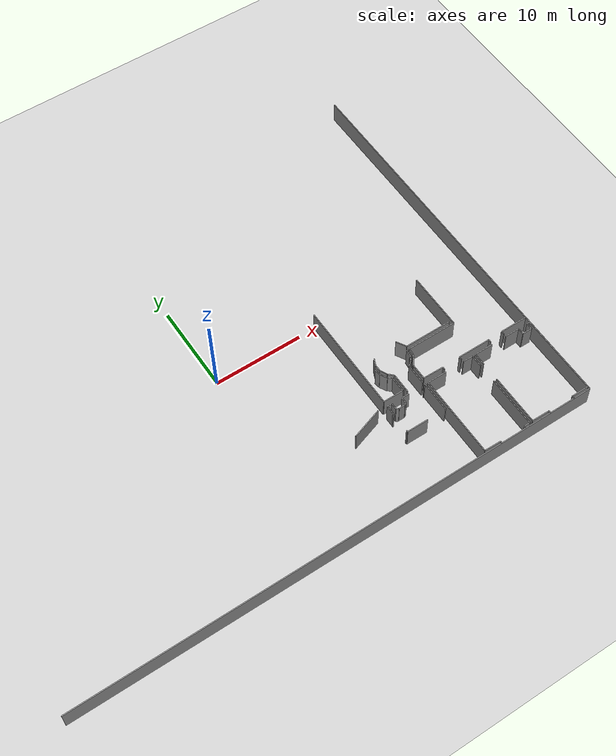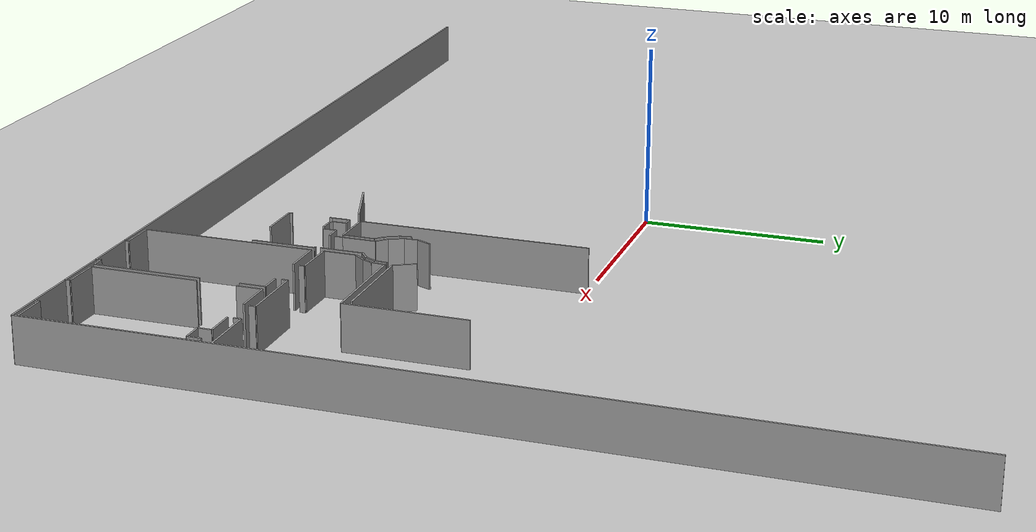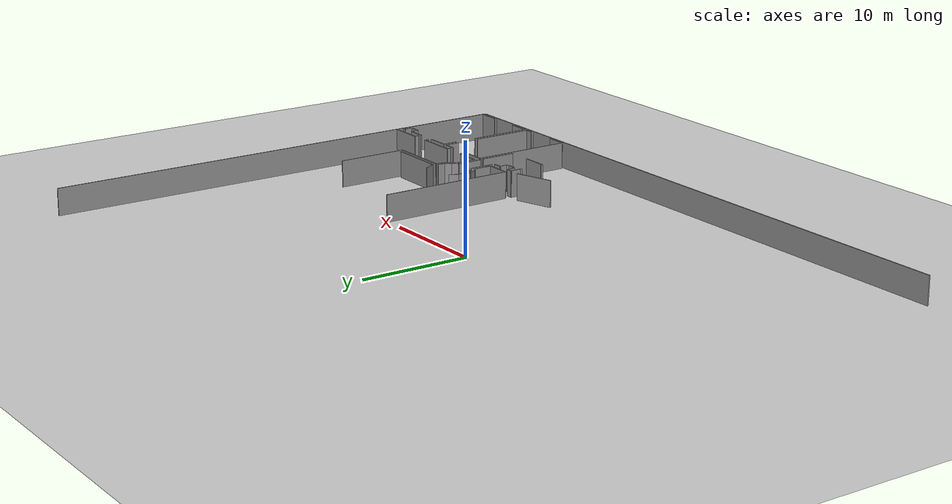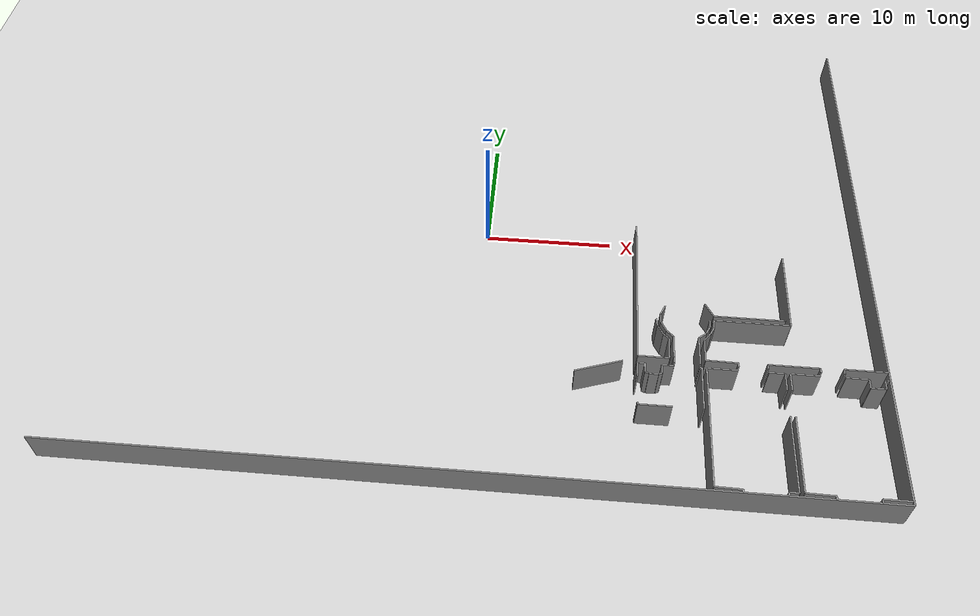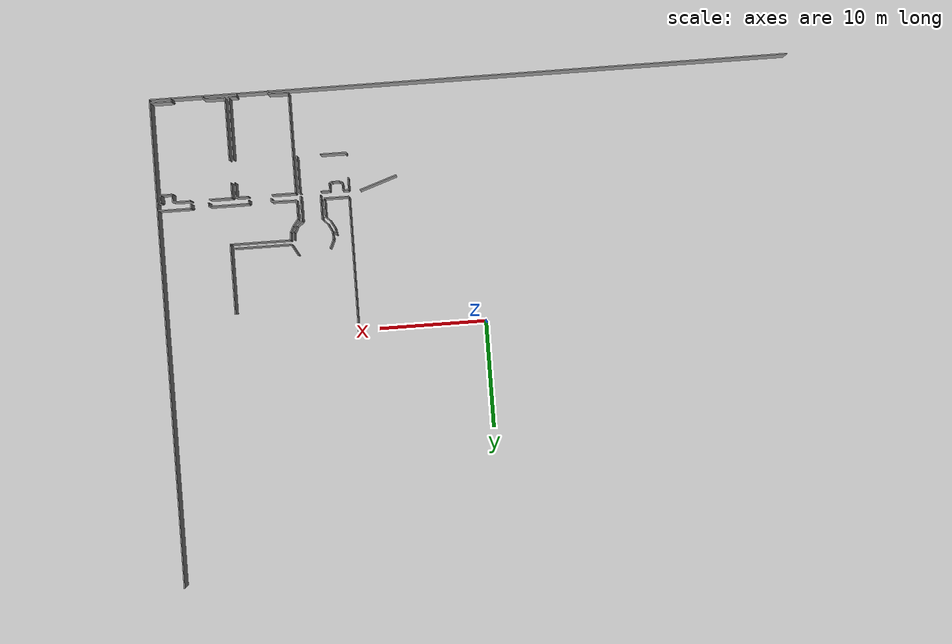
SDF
<sdf version="1.6">
 <world name="default">
  <model name="ground_plane">
   <static>1</static>
   <link name="link">
    <collision name="collision">
     <geometry><plane><normal>0 0 1</normal><size>100 100</size></plane></geometry>
     <surface><friction><ode><mu>100</mu><mu2>50</mu2></ode></friction></surface>
    </collision>
    <visual name="visual">
     <cast_shadows>0</cast_shadows>
     <geometry><plane><normal>0 0 1</normal><size>100 100</size></plane></geometry>
     <material>
      <script><uri>file://media/materials/scripts/gazebo.material</uri><name>Gazebo/Grey</name></script>
     </material>
    </visual>
   </link>
  </model>
  <model name="50032446">
   <static>1</static>
   <link name="Wall_120">
    <collision name="Wall_120_Collision">
     <geometry><box><size>3.64823232241 0.1 2.5</size></box></geometry>
     <pose>1.82411616121 0 1.25 0 0 0</pose>
    </collision>
    <visual name="Wall_120_Visual">
     <pose>1.82411616121 0 1.25 0 0 0</pose>
     <geometry><box><size>3.64823232241 0.1 2.5</size></box></geometry>
     <material>
      <script><uri>file://media/materials/scripts/gazebo.material</uri><name>Gazebo/Grey</name></script>
      <ambient>1 1 1 1</ambient>
     </material>
    </visual>
    <pose>40.6092931696 -35.8011841719 0 0 0 -2.82094366297</pose>
   </link>
   <link name="Wall_137">
    <collision name="Wall_137_Collision">
     <geometry><box><size>1.76926821023 0.1 2.5</size></box></geometry>
     <pose>0.884634105117 0 1.25 0 0 0</pose>
    </collision>
    <visual name="Wall_137_Visual">
     <pose>0.884634105117 0 1.25 0 0 0</pose>
     <geometry><box><size>1.76926821023 0.1 2.5</size></box></geometry>
     <material>
      <script><uri>file://media/materials/scripts/gazebo.material</uri><name>Gazebo/Grey</name></script>
      <ambient>1 1 1 1</ambient>
     </material>
    </visual>
    <pose>46.5738696801 -35.2704799594 0 0 0 1.57079632679</pose>
   </link>
   <link name="Wall_138">
    <collision name="Wall_138_Collision">
     <geometry><box><size>0.773496611239 0.1 2.5</size></box></geometry>
     <pose>0.386748305619 0 1.25 0 0 0</pose>
    </collision>
    <visual name="Wall_138_Visual">
     <pose>0.386748305619 0 1.25 0 0 0</pose>
     <geometry><box><size>0.773496611239 0.1 2.5</size></box></geometry>
     <material>
      <script><uri>file://media/materials/scripts/gazebo.material</uri><name>Gazebo/Grey</name></script>
      <ambient>1 1 1 1</ambient>
     </material>
    </visual>
    <pose>46.5738696801 -33.5012117492 0 0 0 0.901135911525</pose>
   </link>
   <link name="Wall_139">
    <collision name="Wall_139_Collision">
     <geometry><box><size>0.633154547784 0.1 2.5</size></box></geometry>
     <pose>0.316577273892 0 1.25 0 0 0</pose>
    </collision>
    <visual name="Wall_139_Visual">
     <pose>0.316577273892 0 1.25 0 0 0</pose>
     <geometry><box><size>0.633154547784 0.1 2.5</size></box></geometry>
     <material>
      <script><uri>file://media/materials/scripts/gazebo.material</uri><name>Gazebo/Grey</name></script>
      <ambient>1 1 1 1</ambient>
     </material>
    </visual>
    <pose>47.0539943244 -32.8947652689 0 0 0 1.11612513737</pose>
   </link>
   <link name="Wall_140">
    <collision name="Wall_140_Collision">
     <geometry><box><size>0.709411024291 0.1 2.5</size></box></geometry>
     <pose>0.354705512145 0 1.25 0 0 0</pose>
    </collision>
    <visual name="Wall_140_Visual">
     <pose>0.354705512145 0 1.25 0 0 0</pose>
     <geometry><box><size>0.709411024291 0.1 2.5</size></box></geometry>
     <material>
      <script><uri>file://media/materials/scripts/gazebo.material</uri><name>Gazebo/Grey</name></script>
      <ambient>1 1 1 1</ambient>
     </material>
    </visual>
    <pose>47.3320548649 -32.3259357538 0 0 0 1.49943780904</pose>
   </link>
   <link name="Wall_141">
    <collision name="Wall_141_Collision">
     <geometry><box><size>5.63212387165 0.1 2.5</size></box></geometry>
     <pose>2.81606193582 0 1.25 0 0 0</pose>
    </collision>
    <visual name="Wall_141_Visual">
     <pose>2.81606193582 0 1.25 0 0 0</pose>
     <geometry><box><size>5.63212387165 0.1 2.5</size></box></geometry>
     <material>
      <script><uri>file://media/materials/scripts/gazebo.material</uri><name>Gazebo/Grey</name></script>
      <ambient>1 1 1 1</ambient>
     </material>
    </visual>
    <pose>47.382634433 -31.6183301372 0 0 0 0.0</pose>
   </link>
   <link name="Wall_142">
    <collision name="Wall_142_Collision">
     <geometry><box><size>6.53366019426 0.1 2.5</size></box></geometry>
     <pose>3.26683009713 0 1.25 0 0 0</pose>
    </collision>
    <visual name="Wall_142_Visual">
     <pose>3.26683009713 0 1.25 0 0 0</pose>
     <geometry><box><size>6.53366019426 0.1 2.5</size></box></geometry>
     <material>
      <script><uri>file://media/materials/scripts/gazebo.material</uri><name>Gazebo/Grey</name></script>
      <ambient>1 1 1 1</ambient>
     </material>
    </visual>
    <pose>53.0147583046 -31.6183301372 0 0 0 1.57079632679</pose>
   </link>
   <link name="Wall_156">
    <collision name="Wall_156_Collision">
     <geometry><box><size>3.14279577927 0.1 2.5</size></box></geometry>
     <pose>1.57139788964 0 1.25 0 0 0</pose>
    </collision>
    <visual name="Wall_156_Visual">
     <pose>1.57139788964 0 1.25 0 0 0</pose>
     <geometry><box><size>3.14279577927 0.1 2.5</size></box></geometry>
     <material>
      <script><uri>file://media/materials/scripts/gazebo.material</uri><name>Gazebo/Grey</name></script>
      <ambient>1 1 1 1</ambient>
     </material>
    </visual>
    <pose>59.5631602826 -35.2199003913 0 0 0 3.14159265359</pose>
   </link>
   <link name="Wall_157">
    <collision name="Wall_157_Collision">
     <geometry><box><size>0.403365701715 0.1 2.5</size></box></geometry>
     <pose>0.201682850858 0 1.25 0 0 0</pose>
    </collision>
    <visual name="Wall_157_Visual">
     <pose>0.201682850858 0 1.25 0 0 0</pose>
     <geometry><box><size>0.403365701715 0.1 2.5</size></box></geometry>
     <material>
      <script><uri>file://media/materials/scripts/gazebo.material</uri><name>Gazebo/Grey</name></script>
      <ambient>1 1 1 1</ambient>
     </material>
    </visual>
    <pose>56.4203645033 -35.2199003913 0 0 0 -1.57079632679</pose>
   </link>
   <link name="Wall_158">
    <collision name="Wall_158_Collision">
     <geometry><box><size>0.346940253838 0.1 2.5</size></box></geometry>
     <pose>0.173470126919 0 1.25 0 0 0</pose>
    </collision>
    <visual name="Wall_158_Visual">
     <pose>0.173470126919 0 1.25 0 0 0</pose>
     <geometry><box><size>0.346940253838 0.1 2.5</size></box></geometry>
     <material>
      <script><uri>file://media/materials/scripts/gazebo.material</uri><name>Gazebo/Grey</name></script>
      <ambient>1 1 1 1</ambient>
     </material>
    </visual>
    <pose>54.7441220315 -35.623266093 0 0 0 1.57079632679</pose>
   </link>
   <link name="Wall_159">
    <collision name="Wall_159_Collision">
     <geometry><box><size>3.72916293356 0.1 2.5</size></box></geometry>
     <pose>1.86458146678 0 1.25 0 0 0</pose>
    </collision>
    <visual name="Wall_159_Visual">
     <pose>1.86458146678 0 1.25 0 0 0</pose>
     <geometry><box><size>3.72916293356 0.1 2.5</size></box></geometry>
     <material>
      <script><uri>file://media/materials/scripts/gazebo.material</uri><name>Gazebo/Grey</name></script>
      <ambient>1 1 1 1</ambient>
     </material>
    </visual>
    <pose>54.7441220315 -35.2763258392 0 0 0 3.14159265359</pose>
   </link>
   <link name="Wall_160">
    <collision name="Wall_160_Collision">
     <geometry><box><size>0.338552687262 0.1 2.5</size></box></geometry>
     <pose>0.169276343631 0 1.25 0 0 0</pose>
    </collision>
    <visual name="Wall_160_Visual">
     <pose>0.169276343631 0 1.25 0 0 0</pose>
     <geometry><box><size>0.338552687262 0.1 2.5</size></box></geometry>
     <material>
      <script><uri>file://media/materials/scripts/gazebo.material</uri><name>Gazebo/Grey</name></script>
      <ambient>1 1 1 1</ambient>
     </material>
    </visual>
    <pose>51.0149590979 -35.2763258392 0 0 0 -1.57079632679</pose>
   </link>
   <link name="Wall_161">
    <collision name="Wall_161_Collision">
     <geometry><box><size>0.305256589641 0.1 2.5</size></box></geometry>
     <pose>0.15262829482 0 1.25 0 0 0</pose>
    </collision>
    <visual name="Wall_161_Visual">
     <pose>0.15262829482 0 1.25 0 0 0</pose>
     <geometry><box><size>0.305256589641 0.1 2.5</size></box></geometry>
     <material>
      <script><uri>file://media/materials/scripts/gazebo.material</uri><name>Gazebo/Grey</name></script>
      <ambient>1 1 1 1</ambient>
     </material>
    </visual>
    <pose>48.9152715983 -35.6148785264 0 0 0 1.57079632679</pose>
   </link>
   <link name="Wall_162">
    <collision name="Wall_162_Collision">
     <geometry><box><size>2.34172906994 0.1 2.5</size></box></geometry>
     <pose>1.17086453497 0 1.25 0 0 0</pose>
    </collision>
    <visual name="Wall_162_Visual">
     <pose>1.17086453497 0 1.25 0 0 0</pose>
     <geometry><box><size>2.34172906994 0.1 2.5</size></box></geometry>
     <material>
      <script><uri>file://media/materials/scripts/gazebo.material</uri><name>Gazebo/Grey</name></script>
      <ambient>1 1 1 1</ambient>
     </material>
    </visual>
    <pose>48.9152715983 -35.3096219368 0 0 0 3.12487688543</pose>
   </link>
   <link name="Wall_163">
    <collision name="Wall_163_Collision">
     <geometry><box><size>12.589737431 0.1 2.5</size></box></geometry>
     <pose>6.29486871552 0 1.25 0 0 0</pose>
    </collision>
    <visual name="Wall_163_Visual">
     <pose>6.29486871552 0 1.25 0 0 0</pose>
     <geometry><box><size>12.589737431 0.1 2.5</size></box></geometry>
     <material>
      <script><uri>file://media/materials/scripts/gazebo.material</uri><name>Gazebo/Grey</name></script>
      <ambient>1 1 1 1</ambient>
     </material>
    </visual>
    <pose>41.68315586 -35.274038321 0 0 0 1.57079632679</pose>
   </link>
   <link name="Wall_168">
    <collision name="Wall_168_Collision">
     <geometry><box><size>5.2981462207 0.1 2.5</size></box></geometry>
     <pose>2.64907311035 0 1.25 0 0 0</pose>
    </collision>
    <visual name="Wall_168_Visual">
     <pose>2.64907311035 0 1.25 0 0 0</pose>
     <geometry><box><size>5.2981462207 0.1 2.5</size></box></geometry>
     <material>
      <script><uri>file://media/materials/scripts/gazebo.material</uri><name>Gazebo/Grey</name></script>
      <ambient>1 1 1 1</ambient>
     </material>
    </visual>
    <pose>52.6680722195 -31.2266561949 0 0 0 3.14159265359</pose>
   </link>
   <link name="Wall_169">
    <collision name="Wall_169_Collision">
     <geometry><box><size>1.24359615226 0.1 2.5</size></box></geometry>
     <pose>0.621798076132 0 1.25 0 0 0</pose>
    </collision>
    <visual name="Wall_169_Visual">
     <pose>0.621798076132 0 1.25 0 0 0</pose>
     <geometry><box><size>1.24359615226 0.1 2.5</size></box></geometry>
     <material>
      <script><uri>file://media/materials/scripts/gazebo.material</uri><name>Gazebo/Grey</name></script>
      <ambient>1 1 1 1</ambient>
     </material>
    </visual>
    <pose>47.3699259988 -31.2266561949 0 0 0 2.08958753447</pose>
   </link>
   <link name="Wall_177">
    <collision name="Wall_177_Collision">
     <geometry><box><size>0.643925614038 0.1 2.5</size></box></geometry>
     <pose>0.321962807019 0 1.25 0 0 0</pose>
    </collision>
    <visual name="Wall_177_Visual">
     <pose>0.321962807019 0 1.25 0 0 0</pose>
     <geometry><box><size>0.643925614038 0.1 2.5</size></box></geometry>
     <material>
      <script><uri>file://media/materials/scripts/gazebo.material</uri><name>Gazebo/Grey</name></script>
      <ambient>1 1 1 1</ambient>
     </material>
    </visual>
    <pose>43.0828628036 -31.815565036 0 0 0 -1.41304530807</pose>
   </link>
   <link name="Wall_178">
    <collision name="Wall_178_Collision">
     <geometry><box><size>0.850564972726 0.1 2.5</size></box></geometry>
     <pose>0.425282486363 0 1.25 0 0 0</pose>
    </collision>
    <visual name="Wall_178_Visual">
     <pose>0.425282486363 0 1.25 0 0 0</pose>
     <geometry><box><size>0.850564972726 0.1 2.5</size></box></geometry>
     <material>
      <script><uri>file://media/materials/scripts/gazebo.material</uri><name>Gazebo/Grey</name></script>
      <ambient>1 1 1 1</ambient>
     </material>
    </visual>
    <pose>43.1840219398 -32.4514950837 0 0 0 -1.07092493368</pose>
   </link>
   <link name="Wall_179">
    <collision name="Wall_179_Collision">
     <geometry><box><size>0.519378329427 0.1 2.5</size></box></geometry>
     <pose>0.259689164714 0 1.25 0 0 0</pose>
    </collision>
    <visual name="Wall_179_Visual">
     <pose>0.259689164714 0 1.25 0 0 0</pose>
     <geometry><box><size>0.519378329427 0.1 2.5</size></box></geometry>
     <material>
      <script><uri>file://media/materials/scripts/gazebo.material</uri><name>Gazebo/Grey</name></script>
      <ambient>1 1 1 1</ambient>
     </material>
    </visual>
    <pose>43.5917085092 -33.197988509 0 0 0 -0.71648215383</pose>
   </link>
   <link name="Wall_180">
    <collision name="Wall_180_Collision">
     <geometry><box><size>1.74385134182 0.1 2.5</size></box></geometry>
     <pose>0.87192567091 0 1.25 0 0 0</pose>
    </collision>
    <visual name="Wall_180_Visual">
     <pose>0.87192567091 0 1.25 0 0 0</pose>
     <geometry><box><size>1.74385134182 0.1 2.5</size></box></geometry>
     <material>
      <script><uri>file://media/materials/scripts/gazebo.material</uri><name>Gazebo/Grey</name></script>
      <ambient>1 1 1 1</ambient>
     </material>
    </visual>
    <pose>43.9833824514 -33.5390828831 0 0 0 -1.57079632679</pose>
   </link>
   <link name="Wall_181">
    <collision name="Wall_181_Collision">
     <geometry><box><size>2.30024379334 0.1 2.5</size></box></geometry>
     <pose>1.15012189667 0 1.25 0 0 0</pose>
    </collision>
    <visual name="Wall_181_Visual">
     <pose>1.15012189667 0 1.25 0 0 0</pose>
     <geometry><box><size>2.30024379334 0.1 2.5</size></box></geometry>
     <material>
      <script><uri>file://media/materials/scripts/gazebo.material</uri><name>Gazebo/Grey</name></script>
      <ambient>1 1 1 1</ambient>
     </material>
    </visual>
    <pose>43.9833824514 -35.282934225 0 0 0 3.13772526956</pose>
   </link>
   <link name="Wall_216">
    <collision name="Wall_216_Collision">
     <geometry><box><size>1.80688517548 0.1 2.5</size></box></geometry>
     <pose>0.903442587742 0 1.25 0 0 0</pose>
    </collision>
    <visual name="Wall_216_Visual">
     <pose>0.903442587742 0 1.25 0 0 0</pose>
     <geometry><box><size>1.80688517548 0.1 2.5</size></box></geometry>
     <material>
      <script><uri>file://media/materials/scripts/gazebo.material</uri><name>Gazebo/Grey</name></script>
      <ambient>1 1 1 1</ambient>
     </material>
    </visual>
    <pose>44.3244768255 -35.1566123889 0 0 0 1.57079632679</pose>
   </link>
   <link name="Wall_217">
    <collision name="Wall_217_Collision">
     <geometry><box><size>0.705832659595 0.1 2.5</size></box></geometry>
     <pose>0.352916329798 0 1.25 0 0 0</pose>
    </collision>
    <visual name="Wall_217_Visual">
     <pose>0.352916329798 0 1.25 0 0 0</pose>
     <geometry><box><size>0.705832659595 0.1 2.5</size></box></geometry>
     <material>
      <script><uri>file://media/materials/scripts/gazebo.material</uri><name>Gazebo/Grey</name></script>
      <ambient>1 1 1 1</ambient>
     </material>
    </visual>
    <pose>44.3244768255 -33.3497272135 0 0 0 2.36867156105</pose>
   </link>
   <link name="Wall_218">
    <collision name="Wall_218_Collision">
     <geometry><box><size>0.847733647796 0.1 2.5</size></box></geometry>
     <pose>0.423866823898 0 1.25 0 0 0</pose>
    </collision>
    <visual name="Wall_218_Visual">
     <pose>0.423866823898 0 1.25 0 0 0</pose>
     <geometry><box><size>0.847733647796 0.1 2.5</size></box></geometry>
     <material>
      <script><uri>file://media/materials/scripts/gazebo.material</uri><name>Gazebo/Grey</name></script>
      <ambient>1 1 1 1</ambient>
     </material>
    </visual>
    <pose>43.8191894815 -32.8568941349 0 0 0 2.03457802</pose>
   </link>
   <link name="Wall_219">
    <collision name="Wall_219_Collision">
     <geometry><box><size>0.746155322548 0.1 2.5</size></box></geometry>
     <pose>0.373077661274 0 1.25 0 0 0</pose>
    </collision>
    <visual name="Wall_219_Visual">
     <pose>0.373077661274 0 1.25 0 0 0</pose>
     <geometry><box><size>0.746155322548 0.1 2.5</size></box></geometry>
     <material>
      <script><uri>file://media/materials/scripts/gazebo.material</uri><name>Gazebo/Grey</name></script>
      <ambient>1 1 1 1</ambient>
     </material>
    </visual>
    <pose>43.4399698048 -32.0987089502 0 0 0 1.6045258611</pose>
   </link>
   <link name="Wall_220">
    <collision name="Wall_220_Collision">
     <geometry><box><size>0.864849350481 0.1 2.5</size></box></geometry>
     <pose>0.43242467524 0 1.25 0 0 0</pose>
    </collision>
    <visual name="Wall_220_Visual">
     <pose>0.43242467524 0 1.25 0 0 0</pose>
     <geometry><box><size>0.864849350481 0.1 2.5</size></box></geometry>
     <material>
      <script><uri>file://media/materials/scripts/gazebo.material</uri><name>Gazebo/Grey</name></script>
      <ambient>1 1 1 1</ambient>
     </material>
    </visual>
    <pose>43.414807105 -31.3529780309 0 0 0 1.13317491974</pose>
   </link>
   <link name="Wall_227">
    <collision name="Wall_227_Collision">
     <geometry><box><size>0.671641697641 0.1 2.5</size></box></geometry>
     <pose>0.33582084882 0 1.25 0 0 0</pose>
    </collision>
    <visual name="Wall_227_Visual">
     <pose>0.33582084882 0 1.25 0 0 0</pose>
     <geometry><box><size>0.671641697641 0.1 2.5</size></box></geometry>
     <material>
      <script><uri>file://media/materials/scripts/gazebo.material</uri><name>Gazebo/Grey</name></script>
      <ambient>1 1 1 1</ambient>
     </material>
    </visual>
    <pose>47.0794111928 -31.6183301372 0 0 0 -1.64617505707</pose>
   </link>
   <link name="Wall_228">
    <collision name="Wall_228_Collision">
     <geometry><box><size>0.666911601816 0.1 2.5</size></box></geometry>
     <pose>0.333455800908 0 1.25 0 0 0</pose>
    </collision>
    <visual name="Wall_228_Visual">
     <pose>0.333455800908 0 1.25 0 0 0</pose>
     <geometry><box><size>0.666911601816 0.1 2.5</size></box></geometry>
     <material>
      <script><uri>file://media/materials/scripts/gazebo.material</uri><name>Gazebo/Grey</name></script>
      <ambient>1 1 1 1</ambient>
     </material>
    </visual>
    <pose>47.0288316247 -32.2880646198 0 0 0 -2.04279553981</pose>
   </link>
   <link name="Wall_229">
    <collision name="Wall_229_Collision">
     <geometry><box><size>0.685027042457 0.1 2.5</size></box></geometry>
     <pose>0.342513521229 0 1.25 0 0 0</pose>
    </collision>
    <visual name="Wall_229_Visual">
     <pose>0.342513521229 0 1.25 0 0 0</pose>
     <geometry><box><size>0.685027042457 0.1 2.5</size></box></geometry>
     <material>
      <script><uri>file://media/materials/scripts/gazebo.material</uri><name>Gazebo/Grey</name></script>
      <ambient>1 1 1 1</ambient>
     </material>
    </visual>
    <pose>46.7256083845 -32.8820568347 0 0 0 -2.48696027914</pose>
   </link>
   <link name="Wall_230">
    <collision name="Wall_230_Collision">
     <geometry><box><size>2.32513512243 0.1 2.5</size></box></geometry>
     <pose>1.16256756121 0 1.25 0 0 0</pose>
    </collision>
    <visual name="Wall_230_Visual">
     <pose>1.16256756121 0 1.25 0 0 0</pose>
     <geometry><box><size>2.32513512243 0.1 2.5</size></box></geometry>
     <material>
      <script><uri>file://media/materials/scripts/gazebo.material</uri><name>Gazebo/Grey</name></script>
      <ambient>1 1 1 1</ambient>
     </material>
    </visual>
    <pose>46.1821957378 -33.2991476453 0 0 0 -1.57079632679</pose>
   </link>
   <link name="Wall_231">
    <collision name="Wall_231_Collision">
     <geometry><box><size>0.467673763099 0.1 2.5</size></box></geometry>
     <pose>0.23383688155 0 1.25 0 0 0</pose>
    </collision>
    <visual name="Wall_231_Visual">
     <pose>0.23383688155 0 1.25 0 0 0</pose>
     <geometry><box><size>0.467673763099 0.1 2.5</size></box></geometry>
     <material>
      <script><uri>file://media/materials/scripts/gazebo.material</uri><name>Gazebo/Grey</name></script>
      <ambient>1 1 1 1</ambient>
     </material>
    </visual>
    <pose>44.3262560063 -35.6242827677 0 0 0 1.57460065627</pose>
   </link>
   <link name="Wall_232">
    <collision name="Wall_232_Collision">
     <geometry><box><size>0.965078493644 0.1 2.5</size></box></geometry>
     <pose>0.482539246822 0 1.25 0 0 0</pose>
    </collision>
    <visual name="Wall_232_Visual">
     <pose>0.482539246822 0 1.25 0 0 0</pose>
     <geometry><box><size>0.965078493644 0.1 2.5</size></box></geometry>
     <material>
      <script><uri>file://media/materials/scripts/gazebo.material</uri><name>Gazebo/Grey</name></script>
      <ambient>1 1 1 1</ambient>
     </material>
    </visual>
    <pose>41.6605348472 -36.8572550545 0 0 0 1.57079632679</pose>
   </link>
   <link name="Wall_233">
    <collision name="Wall_233_Collision">
     <geometry><box><size>0.544683490092 0.1 2.5</size></box></geometry>
     <pose>0.272341745046 0 1.25 0 0 0</pose>
    </collision>
    <visual name="Wall_233_Visual">
     <pose>0.272341745046 0 1.25 0 0 0</pose>
     <geometry><box><size>0.544683490092 0.1 2.5</size></box></geometry>
     <material>
      <script><uri>file://media/materials/scripts/gazebo.material</uri><name>Gazebo/Grey</name></script>
      <ambient>1 1 1 1</ambient>
     </material>
    </visual>
    <pose>41.6605348472 -35.8921765608 0 0 0 0.0</pose>
   </link>
   <link name="Wall_234">
    <collision name="Wall_234_Collision">
     <geometry><box><size>0.726159930561 0.1 2.5</size></box></geometry>
     <pose>0.363079965281 0 1.25 0 0 0</pose>
    </collision>
    <visual name="Wall_234_Visual">
     <pose>0.363079965281 0 1.25 0 0 0</pose>
     <geometry><box><size>0.726159930561 0.1 2.5</size></box></geometry>
     <material>
      <script><uri>file://media/materials/scripts/gazebo.material</uri><name>Gazebo/Grey</name></script>
      <ambient>1 1 1 1</ambient>
     </material>
    </visual>
    <pose>42.2052183373 -35.8921765608 0 0 0 -1.57079632679</pose>
   </link>
   <link name="Wall_235">
    <collision name="Wall_235_Collision">
     <geometry><box><size>0.307615098791 0.1 2.5</size></box></geometry>
     <pose>0.153807549395 0 1.25 0 0 0</pose>
    </collision>
    <visual name="Wall_235_Visual">
     <pose>0.153807549395 0 1.25 0 0 0</pose>
     <geometry><box><size>0.307615098791 0.1 2.5</size></box></geometry>
     <material>
      <script><uri>file://media/materials/scripts/gazebo.material</uri><name>Gazebo/Grey</name></script>
      <ambient>1 1 1 1</ambient>
     </material>
    </visual>
    <pose>42.2052183373 -36.6183364914 0 0 0 -0.449605664285</pose>
   </link>
   <link name="Wall_236">
    <collision name="Wall_236_Collision">
     <geometry><box><size>0.678376217945 0.1 2.5</size></box></geometry>
     <pose>0.339188108972 0 1.25 0 0 0</pose>
    </collision>
    <visual name="Wall_236_Visual">
     <pose>0.339188108972 0 1.25 0 0 0</pose>
     <geometry><box><size>0.678376217945 0.1 2.5</size></box></geometry>
     <material>
      <script><uri>file://media/materials/scripts/gazebo.material</uri><name>Gazebo/Grey</name></script>
      <ambient>1 1 1 1</ambient>
     </material>
    </visual>
    <pose>42.482262203 -36.7520292192 0 0 0 0.0</pose>
   </link>
   <link name="Wall_237">
    <collision name="Wall_237_Collision">
     <geometry><box><size>0.282301897669 0.1 2.5</size></box></geometry>
     <pose>0.141150948835 0 1.25 0 0 0</pose>
    </collision>
    <visual name="Wall_237_Visual">
     <pose>0.141150948835 0 1.25 0 0 0</pose>
     <geometry><box><size>0.282301897669 0.1 2.5</size></box></geometry>
     <material>
      <script><uri>file://media/materials/scripts/gazebo.material</uri><name>Gazebo/Grey</name></script>
      <ambient>1 1 1 1</ambient>
     </material>
    </visual>
    <pose>43.1606384209 -36.7520292192 0 0 0 0.418132913545</pose>
   </link>
   <link name="Wall_238">
    <collision name="Wall_238_Collision">
     <geometry><box><size>0.707097279251 0.1 2.5</size></box></geometry>
     <pose>0.353548639626 0 1.25 0 0 0</pose>
    </collision>
    <visual name="Wall_238_Visual">
     <pose>0.353548639626 0 1.25 0 0 0</pose>
     <geometry><box><size>0.707097279251 0.1 2.5</size></box></geometry>
     <material>
      <script><uri>file://media/materials/scripts/gazebo.material</uri><name>Gazebo/Grey</name></script>
      <ambient>1 1 1 1</ambient>
     </material>
    </visual>
    <pose>43.4186196353 -36.6373991427 0 0 0 1.57079632679</pose>
   </link>
   <link name="Wall_239">
    <collision name="Wall_239_Collision">
     <geometry><box><size>0.859852658414 0.1 2.5</size></box></geometry>
     <pose>0.429926329207 0 1.25 0 0 0</pose>
    </collision>
    <visual name="Wall_239_Visual">
     <pose>0.429926329207 0 1.25 0 0 0</pose>
     <geometry><box><size>0.859852658414 0.1 2.5</size></box></geometry>
     <material>
      <script><uri>file://media/materials/scripts/gazebo.material</uri><name>Gazebo/Grey</name></script>
      <ambient>1 1 1 1</ambient>
     </material>
    </visual>
    <pose>43.4186196353 -35.9303018634 0 0 0 0.0</pose>
   </link>
   <link name="Wall_240">
    <collision name="Wall_240_Collision">
     <geometry><box><size>0.142842800481 0.1 2.5</size></box></geometry>
     <pose>0.0714214002407 0 1.25 0 0 0</pose>
    </collision>
    <visual name="Wall_240_Visual">
     <pose>0.0714214002407 0 1.25 0 0 0</pose>
     <geometry><box><size>0.142842800481 0.1 2.5</size></box></geometry>
     <material>
      <script><uri>file://media/materials/scripts/gazebo.material</uri><name>Gazebo/Grey</name></script>
      <ambient>1 1 1 1</ambient>
     </material>
    </visual>
    <pose>46.1255161213 -35.9303018634 0 0 0 0.0</pose>
   </link>
   <link name="Wall_241">
    <collision name="Wall_241_Collision">
     <geometry><box><size>3.45059405576 0.1 2.5</size></box></geometry>
     <pose>1.72529702788 0 1.25 0 0 0</pose>
    </collision>
    <visual name="Wall_241_Visual">
     <pose>1.72529702788 0 1.25 0 0 0</pose>
     <geometry><box><size>3.45059405576 0.1 2.5</size></box></geometry>
     <material>
      <script><uri>file://media/materials/scripts/gazebo.material</uri><name>Gazebo/Grey</name></script>
      <ambient>1 1 1 1</ambient>
     </material>
    </visual>
    <pose>46.2683589218 -35.9303018634 0 0 0 -1.57079632679</pose>
   </link>
   <link name="Wall_242">
    <collision name="Wall_242_Collision">
     <geometry><box><size>2.42527758397 0.1 2.5</size></box></geometry>
     <pose>1.21263879199 0 1.25 0 0 0</pose>
    </collision>
    <visual name="Wall_242_Visual">
     <pose>1.21263879199 0 1.25 0 0 0</pose>
     <geometry><box><size>2.42527758397 0.1 2.5</size></box></geometry>
     <material>
      <script><uri>file://media/materials/scripts/gazebo.material</uri><name>Gazebo/Grey</name></script>
      <ambient>1 1 1 1</ambient>
     </material>
    </visual>
    <pose>44.0708164788 -39.3808959192 0 0 0 3.14159265359</pose>
   </link>
   <link name="Wall_243">
    <collision name="Wall_243_Collision">
     <geometry><box><size>0.180459765733 0.1 2.5</size></box></geometry>
     <pose>0.0902298828664 0 1.25 0 0 0</pose>
    </collision>
    <visual name="Wall_243_Visual">
     <pose>0.0902298828664 0 1.25 0 0 0</pose>
     <geometry><box><size>0.180459765733 0.1 2.5</size></box></geometry>
     <material>
      <script><uri>file://media/materials/scripts/gazebo.material</uri><name>Gazebo/Grey</name></script>
      <ambient>1 1 1 1</ambient>
     </material>
    </visual>
    <pose>41.6455388948 -39.3808959192 0 0 0 1.57079632679</pose>
   </link>
   <link name="Wall_244">
    <collision name="Wall_244_Collision">
     <geometry><box><size>0.182094967071 0.1 2.5</size></box></geometry>
     <pose>0.0910474835356 0 1.25 0 0 0</pose>
    </collision>
    <visual name="Wall_244_Visual">
     <pose>0.0910474835356 0 1.25 0 0 0</pose>
     <geometry><box><size>0.182094967071 0.1 2.5</size></box></geometry>
     <material>
      <script><uri>file://media/materials/scripts/gazebo.material</uri><name>Gazebo/Grey</name></script>
      <ambient>1 1 1 1</ambient>
     </material>
    </visual>
    <pose>41.6455388948 -37.0387314949 0 0 0 1.48835058569</pose>
   </link>
   <link name="Wall_245">
    <collision name="Wall_245_Collision">
     <geometry><box><size>9.37729943231 0.1 2.5</size></box></geometry>
     <pose>4.68864971616 0 1.25 0 0 0</pose>
    </collision>
    <visual name="Wall_245_Visual">
     <pose>4.68864971616 0 1.25 0 0 0</pose>
     <geometry><box><size>9.37729943231 0.1 2.5</size></box></geometry>
     <material>
      <script><uri>file://media/materials/scripts/gazebo.material</uri><name>Gazebo/Grey</name></script>
      <ambient>1 1 1 1</ambient>
     </material>
    </visual>
    <pose>46.620636718 -45.3172597057 0 0 0 1.57079632679</pose>
   </link>
   <link name="Wall_246">
    <collision name="Wall_246_Collision">
     <geometry><box><size>2.23490523956 0.1 2.5</size></box></geometry>
     <pose>1.11745261978 0 1.25 0 0 0</pose>
    </collision>
    <visual name="Wall_246_Visual">
     <pose>1.11745261978 0 1.25 0 0 0</pose>
     <geometry><box><size>2.23490523956 0.1 2.5</size></box></geometry>
     <material>
      <script><uri>file://media/materials/scripts/gazebo.material</uri><name>Gazebo/Grey</name></script>
      <ambient>1 1 1 1</ambient>
     </material>
    </visual>
    <pose>46.620636718 -35.9399602734 0 0 0 0.0</pose>
   </link>
   <link name="Wall_247">
    <collision name="Wall_247_Collision">
     <geometry><box><size>1.14985912701 0.1 2.5</size></box></geometry>
     <pose>0.574929563503 0 1.25 0 0 0</pose>
    </collision>
    <visual name="Wall_247_Visual">
     <pose>0.574929563503 0 1.25 0 0 0</pose>
     <geometry><box><size>1.14985912701 0.1 2.5</size></box></geometry>
     <material>
      <script><uri>file://media/materials/scripts/gazebo.material</uri><name>Gazebo/Grey</name></script>
      <ambient>1 1 1 1</ambient>
     </material>
    </visual>
    <pose>51.0347842553 -35.9399602734 0 0 0 0.0</pose>
   </link>
   <link name="Wall_248">
    <collision name="Wall_248_Collision">
     <geometry><box><size>1.37759426799 0.1 2.5</size></box></geometry>
     <pose>0.688797133994 0 1.25 0 0 0</pose>
    </collision>
    <visual name="Wall_248_Visual">
     <pose>0.688797133994 0 1.25 0 0 0</pose>
     <geometry><box><size>1.37759426799 0.1 2.5</size></box></geometry>
     <material>
      <script><uri>file://media/materials/scripts/gazebo.material</uri><name>Gazebo/Grey</name></script>
      <ambient>1 1 1 1</ambient>
     </material>
    </visual>
    <pose>52.1846433823 -35.9399602734 0 0 0 -1.57079632679</pose>
   </link>
   <link name="Wall_249">
    <collision name="Wall_249_Collision">
     <geometry><box><size>5.83723799974 0.1 2.5</size></box></geometry>
     <pose>2.91861899987 0 1.25 0 0 0</pose>
    </collision>
    <visual name="Wall_249_Visual">
     <pose>2.91861899987 0 1.25 0 0 0</pose>
     <geometry><box><size>5.83723799974 0.1 2.5</size></box></geometry>
     <material>
      <script><uri>file://media/materials/scripts/gazebo.material</uri><name>Gazebo/Grey</name></script>
      <ambient>1 1 1 1</ambient>
     </material>
    </visual>
    <pose>52.1846433823 -39.4739216576 0 0 0 -1.57079632679</pose>
   </link>
   <link name="Wall_250">
    <collision name="Wall_250_Collision">
     <geometry><box><size>0.685747109784 0.1 2.5</size></box></geometry>
     <pose>0.342873554892 0 1.25 0 0 0</pose>
    </collision>
    <visual name="Wall_250_Visual">
     <pose>0.342873554892 0 1.25 0 0 0</pose>
     <geometry><box><size>0.685747109784 0.1 2.5</size></box></geometry>
     <material>
      <script><uri>file://media/materials/scripts/gazebo.material</uri><name>Gazebo/Grey</name></script>
      <ambient>1 1 1 1</ambient>
     </material>
    </visual>
    <pose>52.1846433823 -45.3111596573 0 0 0 3.14159265359</pose>
   </link>
   <link name="Wall_251">
    <collision name="Wall_251_Collision">
     <geometry><box><size>0.263572925443 0.1 2.5</size></box></geometry>
     <pose>0.131786462722 0 1.25 0 0 0</pose>
    </collision>
    <visual name="Wall_251_Visual">
     <pose>0.131786462722 0 1.25 0 0 0</pose>
     <geometry><box><size>0.263572925443 0.1 2.5</size></box></geometry>
     <material>
      <script><uri>file://media/materials/scripts/gazebo.material</uri><name>Gazebo/Grey</name></script>
      <ambient>1 1 1 1</ambient>
     </material>
    </visual>
    <pose>51.4988962725 -45.3111596573 0 0 0 -1.57079632679</pose>
   </link>
   <link name="Wall_252">
    <collision name="Wall_252_Collision">
     <geometry><box><size>0.219601743089 0.1 2.5</size></box></geometry>
     <pose>0.109800871544 0 1.25 0 0 0</pose>
    </collision>
    <visual name="Wall_252_Visual">
     <pose>0.109800871544 0 1.25 0 0 0</pose>
     <geometry><box><size>0.219601743089 0.1 2.5</size></box></geometry>
     <material>
      <script><uri>file://media/materials/scripts/gazebo.material</uri><name>Gazebo/Grey</name></script>
      <ambient>1 1 1 1</ambient>
     </material>
    </visual>
    <pose>48.5210559692 -45.5747325828 0 0 0 1.57079632679</pose>
   </link>
   <link name="Wall_253">
    <collision name="Wall_253_Collision">
     <geometry><box><size>1.90079655757 0.1 2.5</size></box></geometry>
     <pose>0.950398278787 0 1.25 0 0 0</pose>
    </collision>
    <visual name="Wall_253_Visual">
     <pose>0.950398278787 0 1.25 0 0 0</pose>
     <geometry><box><size>1.90079655757 0.1 2.5</size></box></geometry>
     <material>
      <script><uri>file://media/materials/scripts/gazebo.material</uri><name>Gazebo/Grey</name></script>
      <ambient>1 1 1 1</ambient>
     </material>
    </visual>
    <pose>48.5210559692 -45.3551308397 0 0 0 3.12166751232</pose>
   </link>
   <link name="Wall_254">
    <collision name="Wall_254_Collision">
     <geometry><box><size>5.82376705948 0.1 2.5</size></box></geometry>
     <pose>2.91188352974 0 1.25 0 0 0</pose>
    </collision>
    <visual name="Wall_254_Visual">
     <pose>2.91188352974 0 1.25 0 0 0</pose>
     <geometry><box><size>5.82376705948 0.1 2.5</size></box></geometry>
     <material>
      <script><uri>file://media/materials/scripts/gazebo.material</uri><name>Gazebo/Grey</name></script>
      <ambient>1 1 1 1</ambient>
     </material>
    </visual>
    <pose>52.5427670582 -45.2781177284 0 0 0 1.57079632679</pose>
   </link>
   <link name="Wall_255">
    <collision name="Wall_255_Collision">
     <geometry><box><size>1.40275696772 0.1 2.5</size></box></geometry>
     <pose>0.701378483858 0 1.25 0 0 0</pose>
    </collision>
    <visual name="Wall_255_Visual">
     <pose>0.701378483858 0 1.25 0 0 0</pose>
     <geometry><box><size>1.40275696772 0.1 2.5</size></box></geometry>
     <material>
      <script><uri>file://media/materials/scripts/gazebo.material</uri><name>Gazebo/Grey</name></script>
      <ambient>1 1 1 1</ambient>
     </material>
    </visual>
    <pose>52.5427670582 -37.3302629756 0 0 0 1.57079632679</pose>
   </link>
   <link name="Wall_256">
    <collision name="Wall_256_Collision">
     <geometry><box><size>2.11875015091 0.1 2.5</size></box></geometry>
     <pose>1.05937507546 0 1.25 0 0 0</pose>
    </collision>
    <visual name="Wall_256_Visual">
     <pose>1.05937507546 0 1.25 0 0 0</pose>
     <geometry><box><size>2.11875015091 0.1 2.5</size></box></geometry>
     <material>
      <script><uri>file://media/materials/scripts/gazebo.material</uri><name>Gazebo/Grey</name></script>
      <ambient>1 1 1 1</ambient>
     </material>
    </visual>
    <pose>52.5427670582 -35.9275060079 0 0 0 0.0</pose>
   </link>
   <link name="Wall_257">
    <collision name="Wall_257_Collision">
     <geometry><box><size>1.65667148316 0.1 2.5</size></box></geometry>
     <pose>0.828335741582 0 1.25 0 0 0</pose>
    </collision>
    <visual name="Wall_257_Visual">
     <pose>0.828335741582 0 1.25 0 0 0</pose>
     <geometry><box><size>1.65667148316 0.1 2.5</size></box></geometry>
     <material>
      <script><uri>file://media/materials/scripts/gazebo.material</uri><name>Gazebo/Grey</name></script>
      <ambient>1 1 1 1</ambient>
     </material>
    </visual>
    <pose>56.4297687446 -35.9275060079 0 0 0 0.0</pose>
   </link>
   <link name="Wall_258">
    <collision name="Wall_258_Collision">
     <geometry><box><size>0.728447448718 0.1 2.5</size></box></geometry>
     <pose>0.364223724359 0 1.25 0 0 0</pose>
    </collision>
    <visual name="Wall_258_Visual">
     <pose>0.364223724359 0 1.25 0 0 0</pose>
     <geometry><box><size>0.728447448718 0.1 2.5</size></box></geometry>
     <material>
      <script><uri>file://media/materials/scripts/gazebo.material</uri><name>Gazebo/Grey</name></script>
      <ambient>1 1 1 1</ambient>
     </material>
    </visual>
    <pose>58.0864402278 -35.9275060079 0 0 0 -1.57079632679</pose>
   </link>
   <link name="Wall_259">
    <collision name="Wall_259_Collision">
     <geometry><box><size>1.10461710123 0.1 2.5</size></box></geometry>
     <pose>0.552308550616 0 1.25 0 0 0</pose>
    </collision>
    <visual name="Wall_259_Visual">
     <pose>0.552308550616 0 1.25 0 0 0</pose>
     <geometry><box><size>1.10461710123 0.1 2.5</size></box></geometry>
     <material>
      <script><uri>file://media/materials/scripts/gazebo.material</uri><name>Gazebo/Grey</name></script>
      <ambient>1 1 1 1</ambient>
     </material>
    </visual>
    <pose>58.0864402278 -36.6559534566 0 0 0 0.0</pose>
   </link>
   <link name="Wall_260">
    <collision name="Wall_260_Collision">
     <geometry><box><size>0.726668267929 0.1 2.5</size></box></geometry>
     <pose>0.363334133965 0 1.25 0 0 0</pose>
    </collision>
    <visual name="Wall_260_Visual">
     <pose>0.363334133965 0 1.25 0 0 0</pose>
     <geometry><box><size>0.726668267929 0.1 2.5</size></box></geometry>
     <material>
      <script><uri>file://media/materials/scripts/gazebo.material</uri><name>Gazebo/Grey</name></script>
      <ambient>1 1 1 1</ambient>
     </material>
    </visual>
    <pose>59.191057329 -36.6559534566 0 0 0 1.57079632679</pose>
   </link>
   <link name="Wall_261">
    <collision name="Wall_261_Collision">
     <geometry><box><size>0.348719434627 0.1 2.5</size></box></geometry>
     <pose>0.174359717314 0 1.25 0 0 0</pose>
    </collision>
    <visual name="Wall_261_Visual">
     <pose>0.174359717314 0 1.25 0 0 0</pose>
     <geometry><box><size>0.348719434627 0.1 2.5</size></box></geometry>
     <material>
      <script><uri>file://media/materials/scripts/gazebo.material</uri><name>Gazebo/Grey</name></script>
      <ambient>1 1 1 1</ambient>
     </material>
    </visual>
    <pose>59.191057329 -35.9292851887 0 0 0 0.0</pose>
   </link>
   <link name="Wall_262">
    <collision name="Wall_262_Collision">
     <geometry><box><size>9.35874511837 0.1 2.5</size></box></geometry>
     <pose>4.67937255919 0 1.25 0 0 0</pose>
    </collision>
    <visual name="Wall_262_Visual">
     <pose>4.67937255919 0 1.25 0 0 0</pose>
     <geometry><box><size>9.35874511837 0.1 2.5</size></box></geometry>
     <material>
      <script><uri>file://media/materials/scripts/gazebo.material</uri><name>Gazebo/Grey</name></script>
      <ambient>1 1 1 1</ambient>
     </material>
    </visual>
    <pose>59.5397767636 -35.9292851887 0 0 0 -1.57079632679</pose>
   </link>
   <link name="Wall_263">
    <collision name="Wall_263_Collision">
     <geometry><box><size>1.99090330279 0.1 2.5</size></box></geometry>
     <pose>0.995451651397 0 1.25 0 0 0</pose>
    </collision>
    <visual name="Wall_263_Visual">
     <pose>0.995451651397 0 1.25 0 0 0</pose>
     <geometry><box><size>1.99090330279 0.1 2.5</size></box></geometry>
     <material>
      <script><uri>file://media/materials/scripts/gazebo.material</uri><name>Gazebo/Grey</name></script>
      <ambient>1 1 1 1</ambient>
     </material>
    </visual>
    <pose>59.5397767636 -45.2880303071 0 0 0 3.14159265359</pose>
   </link>
   <link name="Wall_264">
    <collision name="Wall_264_Collision">
     <geometry><box><size>0.290768974645 0.1 2.5</size></box></geometry>
     <pose>0.145384487323 0 1.25 0 0 0</pose>
    </collision>
    <visual name="Wall_264_Visual">
     <pose>0.145384487323 0 1.25 0 0 0</pose>
     <geometry><box><size>0.290768974645 0.1 2.5</size></box></geometry>
     <material>
      <script><uri>file://media/materials/scripts/gazebo.material</uri><name>Gazebo/Grey</name></script>
      <ambient>1 1 1 1</ambient>
     </material>
    </visual>
    <pose>57.5488734608 -45.2880303071 0 0 0 -1.57079632679</pose>
   </link>
   <link name="Wall_265">
    <collision name="Wall_265_Collision">
     <geometry><box><size>0.26153957597 0.1 2.5</size></box></geometry>
     <pose>0.130769787985 0 1.25 0 0 0</pose>
    </collision>
    <visual name="Wall_265_Visual">
     <pose>0.130769787985 0 1.25 0 0 0</pose>
     <geometry><box><size>0.26153957597 0.1 2.5</size></box></geometry>
     <material>
      <script><uri>file://media/materials/scripts/gazebo.material</uri><name>Gazebo/Grey</name></script>
      <ambient>1 1 1 1</ambient>
     </material>
    </visual>
    <pose>54.5842499292 -45.5787992817 0 0 0 1.57079632679</pose>
   </link>
   <link name="Wall_266">
    <collision name="Wall_266_Collision">
     <geometry><box><size>2.04185807703 0.1 2.5</size></box></geometry>
     <pose>1.02092903851 0 1.25 0 0 0</pose>
    </collision>
    <visual name="Wall_266_Visual">
     <pose>1.02092903851 0 1.25 0 0 0</pose>
     <geometry><box><size>2.04185807703 0.1 2.5</size></box></geometry>
     <material>
      <script><uri>file://media/materials/scripts/gazebo.material</uri><name>Gazebo/Grey</name></script>
      <ambient>1 1 1 1</ambient>
     </material>
    </visual>
    <pose>54.5842499292 -45.3172597057 0 0 0 3.12242169577</pose>
   </link>
   <link name="Wall_273">
    <collision name="Wall_273_Collision">
     <geometry><box><size>45.5787992817 0.1 2.5</size></box></geometry>
     <pose>22.7893996409 0 1.25 0 0 0</pose>
    </collision>
    <visual name="Wall_273_Visual">
     <pose>22.7893996409 0 1.25 0 0 0</pose>
     <geometry><box><size>45.5787992817 0.1 2.5</size></box></geometry>
     <material>
      <script><uri>file://media/materials/scripts/gazebo.material</uri><name>Gazebo/Grey</name></script>
      <ambient>1 1 1 1</ambient>
     </material>
    </visual>
    <pose>59.5631602826 -45.5787992817 0 0 0 1.57079632679</pose>
   </link>
   <link name="Wall_274">
    <collision name="Wall_274_Collision">
     <geometry><box><size>59.5631602826 0.1 2.5</size></box></geometry>
     <pose>29.7815801413 0 1.25 0 0 0</pose>
    </collision>
    <visual name="Wall_274_Visual">
     <pose>29.7815801413 0 1.25 0 0 0</pose>
     <geometry><box><size>59.5631602826 0.1 2.5</size></box></geometry>
     <material>
      <script><uri>file://media/materials/scripts/gazebo.material</uri><name>Gazebo/Grey</name></script>
      <ambient>1 1 1 1</ambient>
     </material>
    </visual>
    <pose>59.5631602826 -45.5787992817 0 0 0 3.14159265359</pose>
   </link>
   <pose>-29.75 22.7787992817 0 0 0 0</pose>
  </model>
 </world>
</sdf>
